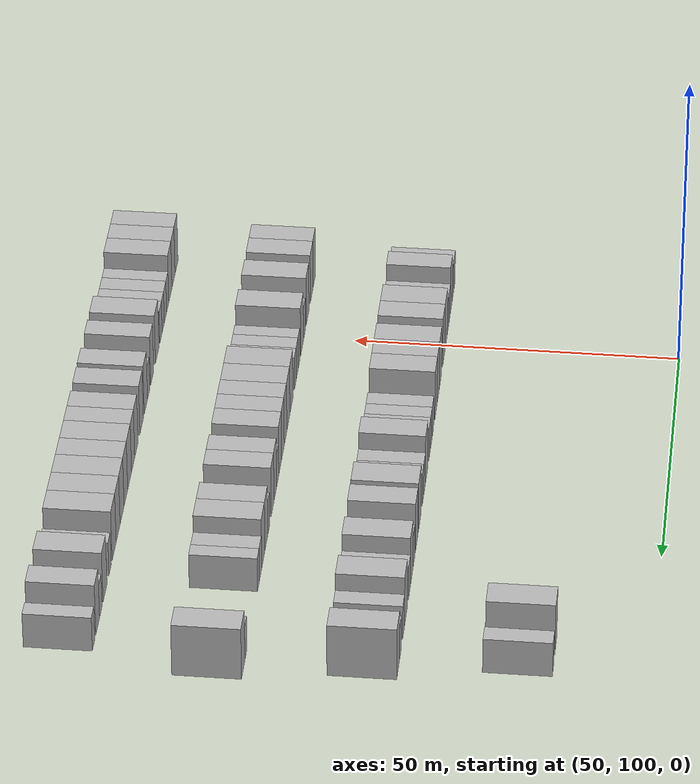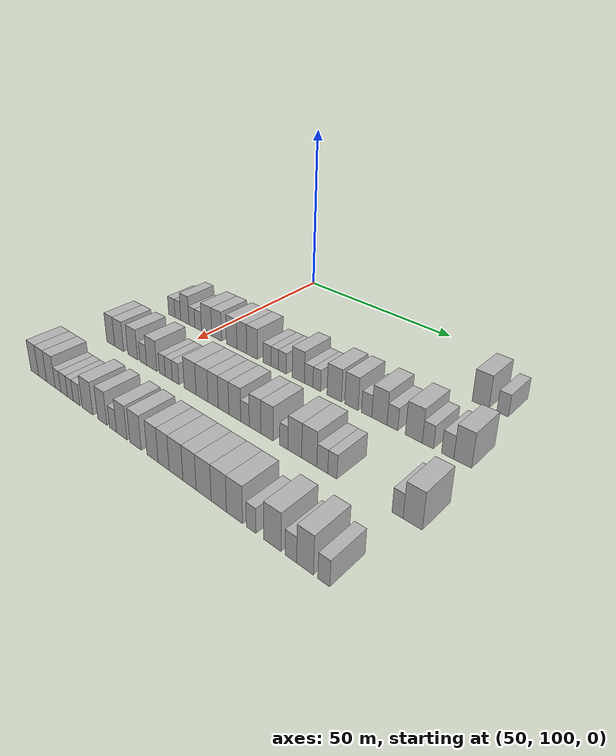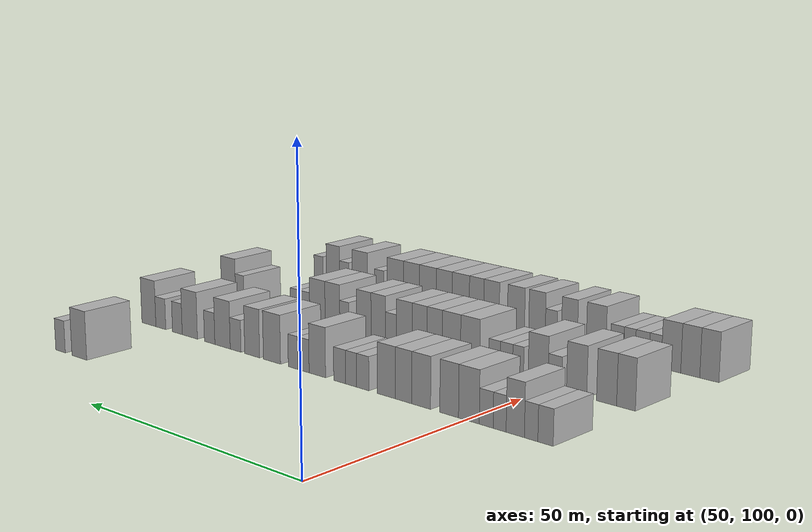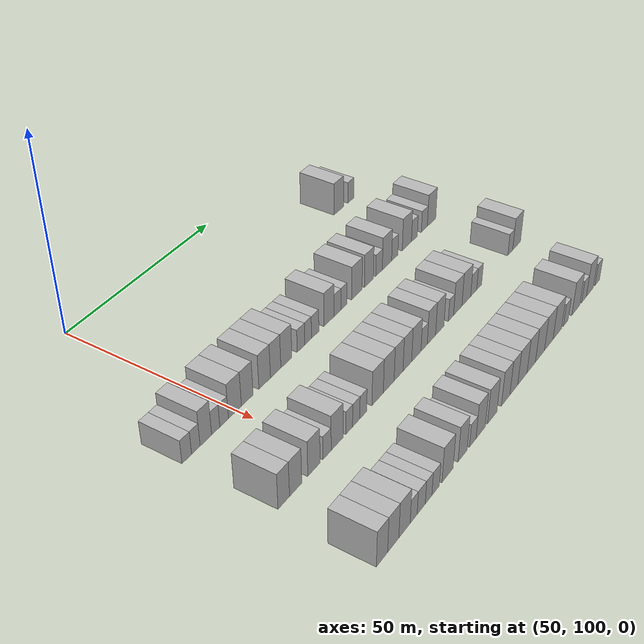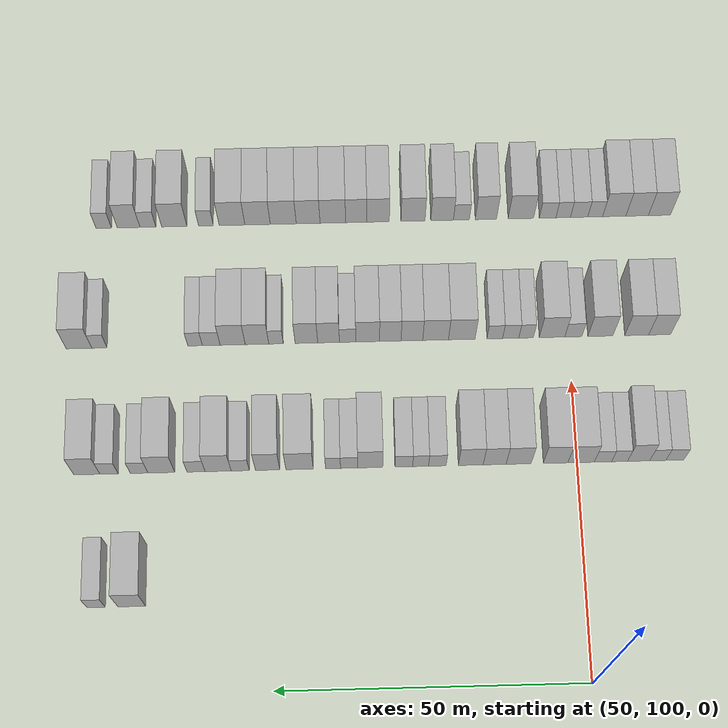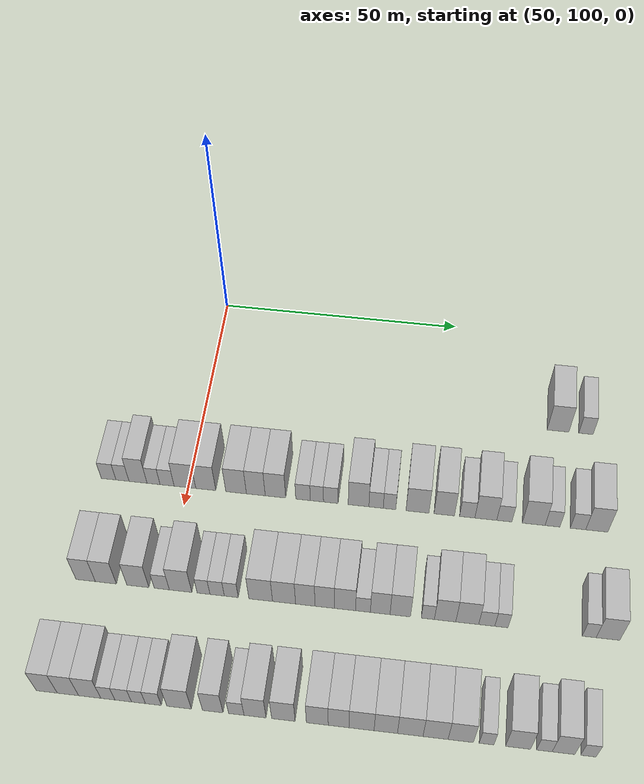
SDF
<sdf version="1.6">
 <world name="default">
  <model name="building_515">
   <static>1</static>
   <pose>69.0000 172.4227 0 0.000000 0.000000 0.000000</pose>
   <link name="link">
    <pose>0 0 4.50 0 0 0</pose>
    <collision name="collision"><geometry><box><size>10.0000 4.4120 9.0000</size></box></geometry></collision>
    <visual name="visual">
     <cast_shadows>0</cast_shadows>
     <geometry><box><size>10.0000 4.4120 9.0000</size></box></geometry>
     <material>
      <script>
       <uri>model://HANNAS_wall/materials/scripts</uri>
       <uri>model://HANNAS_wall/materials/textures</uri>
       <name>vrc/HANNAS_wall</name>
      </script>
     </material>
    </visual>
   </link>
  </model>
  <model name="building_516">
   <static>1</static>
   <pose>69.0000 178.0772 0 0.000000 0.000000 0.000000</pose>
   <link name="link">
    <pose>0 0 3.00 0 0 0</pose>
    <collision name="collision"><geometry><box><size>10.0000 2.8970 6.0000</size></box></geometry></collision>
    <visual name="visual">
     <cast_shadows>0</cast_shadows>
     <geometry><box><size>10.0000 2.8970 6.0000</size></box></geometry>
     <material>
      <script>
       <uri>model://HANNAS_wall/materials/scripts</uri>
       <uri>model://HANNAS_wall/materials/textures</uri>
       <name>vrc/HANNAS_wall</name>
      </script>
     </material>
    </visual>
   </link>
  </model>
  <model name="building_674">
   <static>1</static>
   <pose>91.0000 84.0044 0 0.000000 0.000000 0.000000</pose>
   <link name="link">
    <pose>0 0 3.00 0 0 0</pose>
    <collision name="collision"><geometry><box><size>10.0000 2.9565 6.0000</size></box></geometry></collision>
    <visual name="visual">
     <cast_shadows>0</cast_shadows>
     <geometry><box><size>10.0000 2.9565 6.0000</size></box></geometry>
     <material>
      <script>
       <uri>model://HANNAS_wall/materials/scripts</uri>
       <uri>model://HANNAS_wall/materials/textures</uri>
       <name>vrc/HANNAS_wall</name>
      </script>
     </material>
    </visual>
   </link>
  </model>
  <model name="building_675">
   <static>1</static>
   <pose>91.0000 86.8039 0 0.000000 0.000000 0.000000</pose>
   <link name="link">
    <pose>0 0 3.00 0 0 0</pose>
    <collision name="collision"><geometry><box><size>10.0000 2.6424 6.0000</size></box></geometry></collision>
    <visual name="visual">
     <cast_shadows>0</cast_shadows>
     <geometry><box><size>10.0000 2.6424 6.0000</size></box></geometry>
     <material>
      <script>
       <uri>model://HANNAS_wall/materials/scripts</uri>
       <uri>model://HANNAS_wall/materials/textures</uri>
       <name>vrc/HANNAS_wall</name>
      </script>
     </material>
    </visual>
   </link>
  </model>
  <model name="building_676">
   <static>1</static>
   <pose>91.0000 89.9491 0 0.000000 0.000000 0.000000</pose>
   <link name="link">
    <pose>0 0 4.50 0 0 0</pose>
    <collision name="collision"><geometry><box><size>10.0000 3.6480 9.0000</size></box></geometry></collision>
    <visual name="visual">
     <cast_shadows>0</cast_shadows>
     <geometry><box><size>10.0000 3.6480 9.0000</size></box></geometry>
     <material>
      <script>
       <uri>model://HANNAS_wall/materials/scripts</uri>
       <uri>model://HANNAS_wall/materials/textures</uri>
       <name>vrc/HANNAS_wall</name>
      </script>
     </material>
    </visual>
   </link>
  </model>
  <model name="building_677">
   <static>1</static>
   <pose>91.0000 93.0840 0 0.000000 0.000000 0.000000</pose>
   <link name="link">
    <pose>0 0 3.00 0 0 0</pose>
    <collision name="collision"><geometry><box><size>10.0000 2.6218 6.0000</size></box></geometry></collision>
    <visual name="visual">
     <cast_shadows>0</cast_shadows>
     <geometry><box><size>10.0000 2.6218 6.0000</size></box></geometry>
     <material>
      <script>
       <uri>model://HANNAS_wall/materials/scripts</uri>
       <uri>model://HANNAS_wall/materials/textures</uri>
       <name>vrc/HANNAS_wall</name>
      </script>
     </material>
    </visual>
   </link>
  </model>
  <model name="building_678">
   <static>1</static>
   <pose>91.0000 95.8154 0 0.000000 0.000000 0.000000</pose>
   <link name="link">
    <pose>0 0 3.00 0 0 0</pose>
    <collision name="collision"><geometry><box><size>10.0000 2.8410 6.0000</size></box></geometry></collision>
    <visual name="visual">
     <cast_shadows>0</cast_shadows>
     <geometry><box><size>10.0000 2.8410 6.0000</size></box></geometry>
     <material>
      <script>
       <uri>model://HANNAS_wall/materials/scripts</uri>
       <uri>model://HANNAS_wall/materials/textures</uri>
       <name>vrc/HANNAS_wall</name>
      </script>
     </material>
    </visual>
   </link>
  </model>
  <model name="building_679">
   <static>1</static>
   <pose>91.0000 99.4089 0 0.000000 0.000000 0.000000</pose>
   <link name="link">
    <pose>0 0 4.50 0 0 0</pose>
    <collision name="collision"><geometry><box><size>10.0000 4.3460 9.0000</size></box></geometry></collision>
    <visual name="visual">
     <cast_shadows>0</cast_shadows>
     <geometry><box><size>10.0000 4.3460 9.0000</size></box></geometry>
     <material>
      <script>
       <uri>model://HANNAS_wall/materials/scripts</uri>
       <uri>model://HANNAS_wall/materials/textures</uri>
       <name>vrc/HANNAS_wall</name>
      </script>
     </material>
    </visual>
   </link>
  </model>
  <model name="building_680">
   <static>1</static>
   <pose>91.0000 103.5857 0 0.000000 0.000000 0.000000</pose>
   <link name="link">
    <pose>0 0 4.50 0 0 0</pose>
    <collision name="collision"><geometry><box><size>10.0000 4.0075 9.0000</size></box></geometry></collision>
    <visual name="visual">
     <cast_shadows>0</cast_shadows>
     <geometry><box><size>10.0000 4.0075 9.0000</size></box></geometry>
     <material>
      <script>
       <uri>model://HANNAS_wall/materials/scripts</uri>
       <uri>model://HANNAS_wall/materials/textures</uri>
       <name>vrc/HANNAS_wall</name>
      </script>
     </material>
    </visual>
   </link>
  </model>
  <model name="building_681">
   <static>1</static>
   <pose>91.0000 109.6496 0 0.000000 0.000000 0.000000</pose>
   <link name="link">
    <pose>0 0 4.50 0 0 0</pose>
    <collision name="collision"><geometry><box><size>10.0000 4.1203 9.0000</size></box></geometry></collision>
    <visual name="visual">
     <cast_shadows>0</cast_shadows>
     <geometry><box><size>10.0000 4.1203 9.0000</size></box></geometry>
     <material>
      <script>
       <uri>model://HANNAS_wall/materials/scripts</uri>
       <uri>model://HANNAS_wall/materials/textures</uri>
       <name>vrc/HANNAS_wall</name>
      </script>
     </material>
    </visual>
   </link>
  </model>
  <model name="building_682">
   <static>1</static>
   <pose>91.0000 113.5874 0 0.000000 0.000000 0.000000</pose>
   <link name="link">
    <pose>0 0 4.50 0 0 0</pose>
    <collision name="collision"><geometry><box><size>10.0000 3.7552 9.0000</size></box></geometry></collision>
    <visual name="visual">
     <cast_shadows>0</cast_shadows>
     <geometry><box><size>10.0000 3.7552 9.0000</size></box></geometry>
     <material>
      <script>
       <uri>model://HANNAS_wall/materials/scripts</uri>
       <uri>model://HANNAS_wall/materials/textures</uri>
       <name>vrc/HANNAS_wall</name>
      </script>
     </material>
    </visual>
   </link>
  </model>
  <model name="building_683">
   <static>1</static>
   <pose>91.0000 117.4951 0 0.000000 0.000000 0.000000</pose>
   <link name="link">
    <pose>0 0 4.50 0 0 0</pose>
    <collision name="collision"><geometry><box><size>10.0000 4.0601 9.0000</size></box></geometry></collision>
    <visual name="visual">
     <cast_shadows>0</cast_shadows>
     <geometry><box><size>10.0000 4.0601 9.0000</size></box></geometry>
     <material>
      <script>
       <uri>model://HANNAS_wall/materials/scripts</uri>
       <uri>model://HANNAS_wall/materials/textures</uri>
       <name>vrc/HANNAS_wall</name>
      </script>
     </material>
    </visual>
   </link>
  </model>
  <model name="building_684">
   <static>1</static>
   <pose>91.0000 122.9651 0 0.000000 0.000000 0.000000</pose>
   <link name="link">
    <pose>0 0 3.00 0 0 0</pose>
    <collision name="collision"><geometry><box><size>10.0000 2.8800 6.0000</size></box></geometry></collision>
    <visual name="visual">
     <cast_shadows>0</cast_shadows>
     <geometry><box><size>10.0000 2.8800 6.0000</size></box></geometry>
     <material>
      <script>
       <uri>model://HANNAS_wall/materials/scripts</uri>
       <uri>model://HANNAS_wall/materials/textures</uri>
       <name>vrc/HANNAS_wall</name>
      </script>
     </material>
    </visual>
   </link>
  </model>
  <model name="building_685">
   <static>1</static>
   <pose>91.0000 125.7083 0 0.000000 0.000000 0.000000</pose>
   <link name="link">
    <pose>0 0 3.00 0 0 0</pose>
    <collision name="collision"><geometry><box><size>10.0000 2.6064 6.0000</size></box></geometry></collision>
    <visual name="visual">
     <cast_shadows>0</cast_shadows>
     <geometry><box><size>10.0000 2.6064 6.0000</size></box></geometry>
     <material>
      <script>
       <uri>model://HANNAS_wall/materials/scripts</uri>
       <uri>model://HANNAS_wall/materials/textures</uri>
       <name>vrc/HANNAS_wall</name>
      </script>
     </material>
    </visual>
   </link>
  </model>
  <model name="building_686">
   <static>1</static>
   <pose>91.0000 128.4539 0 0.000000 0.000000 0.000000</pose>
   <link name="link">
    <pose>0 0 3.00 0 0 0</pose>
    <collision name="collision"><geometry><box><size>10.0000 2.8848 6.0000</size></box></geometry></collision>
    <visual name="visual">
     <cast_shadows>0</cast_shadows>
     <geometry><box><size>10.0000 2.8848 6.0000</size></box></geometry>
     <material>
      <script>
       <uri>model://HANNAS_wall/materials/scripts</uri>
       <uri>model://HANNAS_wall/materials/textures</uri>
       <name>vrc/HANNAS_wall</name>
      </script>
     </material>
    </visual>
   </link>
  </model>
  <model name="building_687">
   <static>1</static>
   <pose>91.0000 133.9343 0 0.000000 0.000000 0.000000</pose>
   <link name="link">
    <pose>0 0 4.50 0 0 0</pose>
    <collision name="collision"><geometry><box><size>10.0000 4.0761 9.0000</size></box></geometry></collision>
    <visual name="visual">
     <cast_shadows>0</cast_shadows>
     <geometry><box><size>10.0000 4.0761 9.0000</size></box></geometry>
     <material>
      <script>
       <uri>model://HANNAS_wall/materials/scripts</uri>
       <uri>model://HANNAS_wall/materials/textures</uri>
       <name>vrc/HANNAS_wall</name>
      </script>
     </material>
    </visual>
   </link>
  </model>
  <model name="building_688">
   <static>1</static>
   <pose>91.0000 137.3813 0 0.000000 0.000000 0.000000</pose>
   <link name="link">
    <pose>0 0 3.00 0 0 0</pose>
    <collision name="collision"><geometry><box><size>10.0000 2.8181 6.0000</size></box></geometry></collision>
    <visual name="visual">
     <cast_shadows>0</cast_shadows>
     <geometry><box><size>10.0000 2.8181 6.0000</size></box></geometry>
     <material>
      <script>
       <uri>model://HANNAS_wall/materials/scripts</uri>
       <uri>model://HANNAS_wall/materials/textures</uri>
       <name>vrc/HANNAS_wall</name>
      </script>
     </material>
    </visual>
   </link>
  </model>
  <model name="building_689">
   <static>1</static>
   <pose>91.0000 140.0197 0 0.000000 0.000000 0.000000</pose>
   <link name="link">
    <pose>0 0 3.00 0 0 0</pose>
    <collision name="collision"><geometry><box><size>10.0000 2.4587 6.0000</size></box></geometry></collision>
    <visual name="visual">
     <cast_shadows>0</cast_shadows>
     <geometry><box><size>10.0000 2.4587 6.0000</size></box></geometry>
     <material>
      <script>
       <uri>model://HANNAS_wall/materials/scripts</uri>
       <uri>model://HANNAS_wall/materials/textures</uri>
       <name>vrc/HANNAS_wall</name>
      </script>
     </material>
    </visual>
   </link>
  </model>
  <model name="building_690">
   <static>1</static>
   <pose>91.0000 145.4903 0 0.000000 0.000000 0.000000</pose>
   <link name="link">
    <pose>0 0 4.50 0 0 0</pose>
    <collision name="collision"><geometry><box><size>10.0000 4.4824 9.0000</size></box></geometry></collision>
    <visual name="visual">
     <cast_shadows>0</cast_shadows>
     <geometry><box><size>10.0000 4.4824 9.0000</size></box></geometry>
     <material>
      <script>
       <uri>model://HANNAS_wall/materials/scripts</uri>
       <uri>model://HANNAS_wall/materials/textures</uri>
       <name>vrc/HANNAS_wall</name>
      </script>
     </material>
    </visual>
   </link>
  </model>
  <model name="building_691">
   <static>1</static>
   <pose>91.0000 150.7258 0 0.000000 0.000000 0.000000</pose>
   <link name="link">
    <pose>0 0 4.50 0 0 0</pose>
    <collision name="collision"><geometry><box><size>10.0000 3.9887 9.0000</size></box></geometry></collision>
    <visual name="visual">
     <cast_shadows>0</cast_shadows>
     <geometry><box><size>10.0000 3.9887 9.0000</size></box></geometry>
     <material>
      <script>
       <uri>model://HANNAS_wall/materials/scripts</uri>
       <uri>model://HANNAS_wall/materials/textures</uri>
       <name>vrc/HANNAS_wall</name>
      </script>
     </material>
    </visual>
   </link>
  </model>
  <model name="building_692">
   <static>1</static>
   <pose>91.0000 155.2010 0 0.000000 0.000000 0.000000</pose>
   <link name="link">
    <pose>0 0 3.00 0 0 0</pose>
    <collision name="collision"><geometry><box><size>10.0000 2.9616 6.0000</size></box></geometry></collision>
    <visual name="visual">
     <cast_shadows>0</cast_shadows>
     <geometry><box><size>10.0000 2.9616 6.0000</size></box></geometry>
     <material>
      <script>
       <uri>model://HANNAS_wall/materials/scripts</uri>
       <uri>model://HANNAS_wall/materials/textures</uri>
       <name>vrc/HANNAS_wall</name>
      </script>
     </material>
    </visual>
   </link>
  </model>
  <model name="building_693">
   <static>1</static>
   <pose>91.0000 158.8133 0 0.000000 0.000000 0.000000</pose>
   <link name="link">
    <pose>0 0 4.50 0 0 0</pose>
    <collision name="collision"><geometry><box><size>10.0000 4.2632 9.0000</size></box></geometry></collision>
    <visual name="visual">
     <cast_shadows>0</cast_shadows>
     <geometry><box><size>10.0000 4.2632 9.0000</size></box></geometry>
     <material>
      <script>
       <uri>model://HANNAS_wall/materials/scripts</uri>
       <uri>model://HANNAS_wall/materials/textures</uri>
       <name>vrc/HANNAS_wall</name>
      </script>
     </material>
    </visual>
   </link>
  </model>
  <model name="building_694">
   <static>1</static>
   <pose>91.0000 162.4198 0 0.000000 0.000000 0.000000</pose>
   <link name="link">
    <pose>0 0 3.00 0 0 0</pose>
    <collision name="collision"><geometry><box><size>10.0000 2.9498 6.0000</size></box></geometry></collision>
    <visual name="visual">
     <cast_shadows>0</cast_shadows>
     <geometry><box><size>10.0000 2.9498 6.0000</size></box></geometry>
     <material>
      <script>
       <uri>model://HANNAS_wall/materials/scripts</uri>
       <uri>model://HANNAS_wall/materials/textures</uri>
       <name>vrc/HANNAS_wall</name>
      </script>
     </material>
    </visual>
   </link>
  </model>
  <model name="building_695">
   <static>1</static>
   <pose>91.0000 168.0978 0 0.000000 0.000000 0.000000</pose>
   <link name="link">
    <pose>0 0 4.50 0 0 0</pose>
    <collision name="collision"><geometry><box><size>10.0000 4.4062 9.0000</size></box></geometry></collision>
    <visual name="visual">
     <cast_shadows>0</cast_shadows>
     <geometry><box><size>10.0000 4.4062 9.0000</size></box></geometry>
     <material>
      <script>
       <uri>model://HANNAS_wall/materials/scripts</uri>
       <uri>model://HANNAS_wall/materials/textures</uri>
       <name>vrc/HANNAS_wall</name>
      </script>
     </material>
    </visual>
   </link>
  </model>
  <model name="building_696">
   <static>1</static>
   <pose>91.0000 171.7258 0 0.000000 0.000000 0.000000</pose>
   <link name="link">
    <pose>0 0 3.00 0 0 0</pose>
    <collision name="collision"><geometry><box><size>10.0000 2.8497 6.0000</size></box></geometry></collision>
    <visual name="visual">
     <cast_shadows>0</cast_shadows>
     <geometry><box><size>10.0000 2.8497 6.0000</size></box></geometry>
     <material>
      <script>
       <uri>model://HANNAS_wall/materials/scripts</uri>
       <uri>model://HANNAS_wall/materials/textures</uri>
       <name>vrc/HANNAS_wall</name>
      </script>
     </material>
    </visual>
   </link>
  </model>
  <model name="building_697">
   <static>1</static>
   <pose>91.0000 176.6337 0 0.000000 0.000000 0.000000</pose>
   <link name="link">
    <pose>0 0 3.00 0 0 0</pose>
    <collision name="collision"><geometry><box><size>10.0000 2.9661 6.0000</size></box></geometry></collision>
    <visual name="visual">
     <cast_shadows>0</cast_shadows>
     <geometry><box><size>10.0000 2.9661 6.0000</size></box></geometry>
     <material>
      <script>
       <uri>model://HANNAS_wall/materials/scripts</uri>
       <uri>model://HANNAS_wall/materials/textures</uri>
       <name>vrc/HANNAS_wall</name>
      </script>
     </material>
    </visual>
   </link>
  </model>
  <model name="building_698">
   <static>1</static>
   <pose>91.0000 180.2407 0 0.000000 0.000000 0.000000</pose>
   <link name="link">
    <pose>0 0 4.50 0 0 0</pose>
    <collision name="collision"><geometry><box><size>10.0000 4.2479 9.0000</size></box></geometry></collision>
    <visual name="visual">
     <cast_shadows>0</cast_shadows>
     <geometry><box><size>10.0000 4.2479 9.0000</size></box></geometry>
     <material>
      <script>
       <uri>model://HANNAS_wall/materials/scripts</uri>
       <uri>model://HANNAS_wall/materials/textures</uri>
       <name>vrc/HANNAS_wall</name>
      </script>
     </material>
    </visual>
   </link>
  </model>
  <model name="building_864">
   <static>1</static>
   <pose>113.0000 84.6577 0 0.000000 0.000000 0.000000</pose>
   <link name="link">
    <pose>0 0 4.50 0 0 0</pose>
    <collision name="collision"><geometry><box><size>10.0000 3.7193 9.0000</size></box></geometry></collision>
    <visual name="visual">
     <cast_shadows>0</cast_shadows>
     <geometry><box><size>10.0000 3.7193 9.0000</size></box></geometry>
     <material>
      <script>
       <uri>model://HANNAS_wall/materials/scripts</uri>
       <uri>model://HANNAS_wall/materials/textures</uri>
       <name>vrc/HANNAS_wall</name>
      </script>
     </material>
    </visual>
   </link>
  </model>
  <model name="building_865">
   <static>1</static>
   <pose>113.0000 88.5385 0 0.000000 0.000000 0.000000</pose>
   <link name="link">
    <pose>0 0 4.50 0 0 0</pose>
    <collision name="collision"><geometry><box><size>10.0000 4.0424 9.0000</size></box></geometry></collision>
    <visual name="visual">
     <cast_shadows>0</cast_shadows>
     <geometry><box><size>10.0000 4.0424 9.0000</size></box></geometry>
     <material>
      <script>
       <uri>model://HANNAS_wall/materials/scripts</uri>
       <uri>model://HANNAS_wall/materials/textures</uri>
       <name>vrc/HANNAS_wall</name>
      </script>
     </material>
    </visual>
   </link>
  </model>
  <model name="building_866">
   <static>1</static>
   <pose>113.0000 94.6717 0 0.000000 0.000000 0.000000</pose>
   <link name="link">
    <pose>0 0 4.50 0 0 0</pose>
    <collision name="collision"><geometry><box><size>10.0000 4.2241 9.0000</size></box></geometry></collision>
    <visual name="visual">
     <cast_shadows>0</cast_shadows>
     <geometry><box><size>10.0000 4.2241 9.0000</size></box></geometry>
     <material>
      <script>
       <uri>model://HANNAS_wall/materials/scripts</uri>
       <uri>model://HANNAS_wall/materials/textures</uri>
       <name>vrc/HANNAS_wall</name>
      </script>
     </material>
    </visual>
   </link>
  </model>
  <model name="building_867">
   <static>1</static>
   <pose>113.0000 99.2260 0 0.000000 0.000000 0.000000</pose>
   <link name="link">
    <pose>0 0 3.00 0 0 0</pose>
    <collision name="collision"><geometry><box><size>10.0000 2.8844 6.0000</size></box></geometry></collision>
    <visual name="visual">
     <cast_shadows>0</cast_shadows>
     <geometry><box><size>10.0000 2.8844 6.0000</size></box></geometry>
     <material>
      <script>
       <uri>model://HANNAS_wall/materials/scripts</uri>
       <uri>model://HANNAS_wall/materials/textures</uri>
       <name>vrc/HANNAS_wall</name>
      </script>
     </material>
    </visual>
   </link>
  </model>
  <model name="building_868">
   <static>1</static>
   <pose>113.0000 102.8153 0 0.000000 0.000000 0.000000</pose>
   <link name="link">
    <pose>0 0 4.50 0 0 0</pose>
    <collision name="collision"><geometry><box><size>10.0000 4.2943 9.0000</size></box></geometry></collision>
    <visual name="visual">
     <cast_shadows>0</cast_shadows>
     <geometry><box><size>10.0000 4.2943 9.0000</size></box></geometry>
     <material>
      <script>
       <uri>model://HANNAS_wall/materials/scripts</uri>
       <uri>model://HANNAS_wall/materials/textures</uri>
       <name>vrc/HANNAS_wall</name>
      </script>
     </material>
    </visual>
   </link>
  </model>
  <model name="building_869">
   <static>1</static>
   <pose>113.0000 107.1842 0 0.000000 0.000000 0.000000</pose>
   <link name="link">
    <pose>0 0 3.00 0 0 0</pose>
    <collision name="collision"><geometry><box><size>10.0000 2.4434 6.0000</size></box></geometry></collision>
    <visual name="visual">
     <cast_shadows>0</cast_shadows>
     <geometry><box><size>10.0000 2.4434 6.0000</size></box></geometry>
     <material>
      <script>
       <uri>model://HANNAS_wall/materials/scripts</uri>
       <uri>model://HANNAS_wall/materials/textures</uri>
       <name>vrc/HANNAS_wall</name>
      </script>
     </material>
    </visual>
   </link>
  </model>
  <model name="building_870">
   <static>1</static>
   <pose>113.0000 109.7714 0 0.000000 0.000000 0.000000</pose>
   <link name="link">
    <pose>0 0 3.00 0 0 0</pose>
    <collision name="collision"><geometry><box><size>10.0000 2.7311 6.0000</size></box></geometry></collision>
    <visual name="visual">
     <cast_shadows>0</cast_shadows>
     <geometry><box><size>10.0000 2.7311 6.0000</size></box></geometry>
     <material>
      <script>
       <uri>model://HANNAS_wall/materials/scripts</uri>
       <uri>model://HANNAS_wall/materials/textures</uri>
       <name>vrc/HANNAS_wall</name>
      </script>
     </material>
    </visual>
   </link>
  </model>
  <model name="building_871">
   <static>1</static>
   <pose>113.0000 112.4507 0 0.000000 0.000000 0.000000</pose>
   <link name="link">
    <pose>0 0 3.00 0 0 0</pose>
    <collision name="collision"><geometry><box><size>10.0000 2.6275 6.0000</size></box></geometry></collision>
    <visual name="visual">
     <cast_shadows>0</cast_shadows>
     <geometry><box><size>10.0000 2.6275 6.0000</size></box></geometry>
     <material>
      <script>
       <uri>model://HANNAS_wall/materials/scripts</uri>
       <uri>model://HANNAS_wall/materials/textures</uri>
       <name>vrc/HANNAS_wall</name>
      </script>
     </material>
    </visual>
   </link>
  </model>
  <model name="building_872">
   <static>1</static>
   <pose>113.0000 118.0005 0 0.000000 0.000000 0.000000</pose>
   <link name="link">
    <pose>0 0 4.50 0 0 0</pose>
    <collision name="collision"><geometry><box><size>10.0000 4.4721 9.0000</size></box></geometry></collision>
    <visual name="visual">
     <cast_shadows>0</cast_shadows>
     <geometry><box><size>10.0000 4.4721 9.0000</size></box></geometry>
     <material>
      <script>
       <uri>model://HANNAS_wall/materials/scripts</uri>
       <uri>model://HANNAS_wall/materials/textures</uri>
       <name>vrc/HANNAS_wall</name>
      </script>
     </material>
    </visual>
   </link>
  </model>
  <model name="building_873">
   <static>1</static>
   <pose>113.0000 122.4009 0 0.000000 0.000000 0.000000</pose>
   <link name="link">
    <pose>0 0 4.50 0 0 0</pose>
    <collision name="collision"><geometry><box><size>10.0000 4.3287 9.0000</size></box></geometry></collision>
    <visual name="visual">
     <cast_shadows>0</cast_shadows>
     <geometry><box><size>10.0000 4.3287 9.0000</size></box></geometry>
     <material>
      <script>
       <uri>model://HANNAS_wall/materials/scripts</uri>
       <uri>model://HANNAS_wall/materials/textures</uri>
       <name>vrc/HANNAS_wall</name>
      </script>
     </material>
    </visual>
   </link>
  </model>
  <model name="building_874">
   <static>1</static>
   <pose>113.0000 126.3901 0 0.000000 0.000000 0.000000</pose>
   <link name="link">
    <pose>0 0 4.50 0 0 0</pose>
    <collision name="collision"><geometry><box><size>10.0000 3.6496 9.0000</size></box></geometry></collision>
    <visual name="visual">
     <cast_shadows>0</cast_shadows>
     <geometry><box><size>10.0000 3.6496 9.0000</size></box></geometry>
     <material>
      <script>
       <uri>model://HANNAS_wall/materials/scripts</uri>
       <uri>model://HANNAS_wall/materials/textures</uri>
       <name>vrc/HANNAS_wall</name>
      </script>
     </material>
    </visual>
   </link>
  </model>
  <model name="building_875">
   <static>1</static>
   <pose>113.0000 130.0208 0 0.000000 0.000000 0.000000</pose>
   <link name="link">
    <pose>0 0 4.50 0 0 0</pose>
    <collision name="collision"><geometry><box><size>10.0000 3.6119 9.0000</size></box></geometry></collision>
    <visual name="visual">
     <cast_shadows>0</cast_shadows>
     <geometry><box><size>10.0000 3.6119 9.0000</size></box></geometry>
     <material>
      <script>
       <uri>model://HANNAS_wall/materials/scripts</uri>
       <uri>model://HANNAS_wall/materials/textures</uri>
       <name>vrc/HANNAS_wall</name>
      </script>
     </material>
    </visual>
   </link>
  </model>
  <model name="building_876">
   <static>1</static>
   <pose>113.0000 133.8149 0 0.000000 0.000000 0.000000</pose>
   <link name="link">
    <pose>0 0 4.50 0 0 0</pose>
    <collision name="collision"><geometry><box><size>10.0000 3.9764 9.0000</size></box></geometry></collision>
    <visual name="visual">
     <cast_shadows>0</cast_shadows>
     <geometry><box><size>10.0000 3.9764 9.0000</size></box></geometry>
     <material>
      <script>
       <uri>model://HANNAS_wall/materials/scripts</uri>
       <uri>model://HANNAS_wall/materials/textures</uri>
       <name>vrc/HANNAS_wall</name>
      </script>
     </material>
    </visual>
   </link>
  </model>
  <model name="building_877">
   <static>1</static>
   <pose>113.0000 137.1823 0 0.000000 0.000000 0.000000</pose>
   <link name="link">
    <pose>0 0 3.00 0 0 0</pose>
    <collision name="collision"><geometry><box><size>10.0000 2.7584 6.0000</size></box></geometry></collision>
    <visual name="visual">
     <cast_shadows>0</cast_shadows>
     <geometry><box><size>10.0000 2.7584 6.0000</size></box></geometry>
     <material>
      <script>
       <uri>model://HANNAS_wall/materials/scripts</uri>
       <uri>model://HANNAS_wall/materials/textures</uri>
       <name>vrc/HANNAS_wall</name>
      </script>
     </material>
    </visual>
   </link>
  </model>
  <model name="building_878">
   <static>1</static>
   <pose>113.0000 140.3886 0 0.000000 0.000000 0.000000</pose>
   <link name="link">
    <pose>0 0 4.50 0 0 0</pose>
    <collision name="collision"><geometry><box><size>10.0000 3.6543 9.0000</size></box></geometry></collision>
    <visual name="visual">
     <cast_shadows>0</cast_shadows>
     <geometry><box><size>10.0000 3.6543 9.0000</size></box></geometry>
     <material>
      <script>
       <uri>model://HANNAS_wall/materials/scripts</uri>
       <uri>model://HANNAS_wall/materials/textures</uri>
       <name>vrc/HANNAS_wall</name>
      </script>
     </material>
    </visual>
   </link>
  </model>
  <model name="building_879">
   <static>1</static>
   <pose>113.0000 144.1109 0 0.000000 0.000000 0.000000</pose>
   <link name="link">
    <pose>0 0 4.50 0 0 0</pose>
    <collision name="collision"><geometry><box><size>10.0000 3.7902 9.0000</size></box></geometry></collision>
    <visual name="visual">
     <cast_shadows>0</cast_shadows>
     <geometry><box><size>10.0000 3.7902 9.0000</size></box></geometry>
     <material>
      <script>
       <uri>model://HANNAS_wall/materials/scripts</uri>
       <uri>model://HANNAS_wall/materials/textures</uri>
       <name>vrc/HANNAS_wall</name>
      </script>
     </material>
    </visual>
   </link>
  </model>
  <model name="building_880">
   <static>1</static>
   <pose>113.0000 149.2182 0 0.000000 0.000000 0.000000</pose>
   <link name="link">
    <pose>0 0 3.00 0 0 0</pose>
    <collision name="collision"><geometry><box><size>10.0000 2.4244 6.0000</size></box></geometry></collision>
    <visual name="visual">
     <cast_shadows>0</cast_shadows>
     <geometry><box><size>10.0000 2.4244 6.0000</size></box></geometry>
     <material>
      <script>
       <uri>model://HANNAS_wall/materials/scripts</uri>
       <uri>model://HANNAS_wall/materials/textures</uri>
       <name>vrc/HANNAS_wall</name>
      </script>
     </material>
    </visual>
   </link>
  </model>
  <model name="building_881">
   <static>1</static>
   <pose>113.0000 152.4066 0 0.000000 0.000000 0.000000</pose>
   <link name="link">
    <pose>0 0 4.50 0 0 0</pose>
    <collision name="collision"><geometry><box><size>10.0000 3.9524 9.0000</size></box></geometry></collision>
    <visual name="visual">
     <cast_shadows>0</cast_shadows>
     <geometry><box><size>10.0000 3.9524 9.0000</size></box></geometry>
     <material>
      <script>
       <uri>model://HANNAS_wall/materials/scripts</uri>
       <uri>model://HANNAS_wall/materials/textures</uri>
       <name>vrc/HANNAS_wall</name>
      </script>
     </material>
    </visual>
   </link>
  </model>
  <model name="building_882">
   <static>1</static>
   <pose>113.0000 156.4924 0 0.000000 0.000000 0.000000</pose>
   <link name="link">
    <pose>0 0 4.50 0 0 0</pose>
    <collision name="collision"><geometry><box><size>10.0000 4.2190 9.0000</size></box></geometry></collision>
    <visual name="visual">
     <cast_shadows>0</cast_shadows>
     <geometry><box><size>10.0000 4.2190 9.0000</size></box></geometry>
     <material>
      <script>
       <uri>model://HANNAS_wall/materials/scripts</uri>
       <uri>model://HANNAS_wall/materials/textures</uri>
       <name>vrc/HANNAS_wall</name>
      </script>
     </material>
    </visual>
   </link>
  </model>
  <model name="building_883">
   <static>1</static>
   <pose>113.0000 160.0862 0 0.000000 0.000000 0.000000</pose>
   <link name="link">
    <pose>0 0 3.00 0 0 0</pose>
    <collision name="collision"><geometry><box><size>10.0000 2.9687 6.0000</size></box></geometry></collision>
    <visual name="visual">
     <cast_shadows>0</cast_shadows>
     <geometry><box><size>10.0000 2.9687 6.0000</size></box></geometry>
     <material>
      <script>
       <uri>model://HANNAS_wall/materials/scripts</uri>
       <uri>model://HANNAS_wall/materials/textures</uri>
       <name>vrc/HANNAS_wall</name>
      </script>
     </material>
    </visual>
   </link>
  </model>
  <model name="building_884">
   <static>1</static>
   <pose>113.0000 162.7919 0 0.000000 0.000000 0.000000</pose>
   <link name="link">
    <pose>0 0 3.00 0 0 0</pose>
    <collision name="collision"><geometry><box><size>10.0000 2.4425 6.0000</size></box></geometry></collision>
    <visual name="visual">
     <cast_shadows>0</cast_shadows>
     <geometry><box><size>10.0000 2.4425 6.0000</size></box></geometry>
     <material>
      <script>
       <uri>model://HANNAS_wall/materials/scripts</uri>
       <uri>model://HANNAS_wall/materials/textures</uri>
       <name>vrc/HANNAS_wall</name>
      </script>
     </material>
    </visual>
   </link>
  </model>
  <model name="building_885">
   <static>1</static>
   <pose>113.0000 178.8335 0 0.000000 0.000000 0.000000</pose>
   <link name="link">
    <pose>0 0 3.00 0 0 0</pose>
    <collision name="collision"><geometry><box><size>10.0000 2.5469 6.0000</size></box></geometry></collision>
    <visual name="visual">
     <cast_shadows>0</cast_shadows>
     <geometry><box><size>10.0000 2.5469 6.0000</size></box></geometry>
     <material>
      <script>
       <uri>model://HANNAS_wall/materials/scripts</uri>
       <uri>model://HANNAS_wall/materials/textures</uri>
       <name>vrc/HANNAS_wall</name>
      </script>
     </material>
    </visual>
   </link>
  </model>
  <model name="building_886">
   <static>1</static>
   <pose>113.0000 182.2583 0 0.000000 0.000000 0.000000</pose>
   <link name="link">
    <pose>0 0 4.50 0 0 0</pose>
    <collision name="collision"><geometry><box><size>10.0000 4.3027 9.0000</size></box></geometry></collision>
    <visual name="visual">
     <cast_shadows>0</cast_shadows>
     <geometry><box><size>10.0000 4.3027 9.0000</size></box></geometry>
     <material>
      <script>
       <uri>model://HANNAS_wall/materials/scripts</uri>
       <uri>model://HANNAS_wall/materials/textures</uri>
       <name>vrc/HANNAS_wall</name>
      </script>
     </material>
    </visual>
   </link>
  </model>
  <model name="building_1041">
   <static>1</static>
   <pose>135.0000 82.8849 0 0.000000 0.000000 0.000000</pose>
   <link name="link">
    <pose>0 0 4.50 0 0 0</pose>
    <collision name="collision"><geometry><box><size>10.0000 3.8308 9.0000</size></box></geometry></collision>
    <visual name="visual">
     <cast_shadows>0</cast_shadows>
     <geometry><box><size>10.0000 3.8308 9.0000</size></box></geometry>
     <material>
      <script>
       <uri>model://HANNAS_wall/materials/scripts</uri>
       <uri>model://HANNAS_wall/materials/textures</uri>
       <name>vrc/HANNAS_wall</name>
      </script>
     </material>
    </visual>
   </link>
  </model>
  <model name="building_1042">
   <static>1</static>
   <pose>135.0000 86.7422 0 0.000000 0.000000 0.000000</pose>
   <link name="link">
    <pose>0 0 4.50 0 0 0</pose>
    <collision name="collision"><geometry><box><size>10.0000 3.8837 9.0000</size></box></geometry></collision>
    <visual name="visual">
     <cast_shadows>0</cast_shadows>
     <geometry><box><size>10.0000 3.8837 9.0000</size></box></geometry>
     <material>
      <script>
       <uri>model://HANNAS_wall/materials/scripts</uri>
       <uri>model://HANNAS_wall/materials/textures</uri>
       <name>vrc/HANNAS_wall</name>
      </script>
     </material>
    </visual>
   </link>
  </model>
  <model name="building_1043">
   <static>1</static>
   <pose>135.0000 90.6999 0 0.000000 0.000000 0.000000</pose>
   <link name="link">
    <pose>0 0 4.50 0 0 0</pose>
    <collision name="collision"><geometry><box><size>10.0000 4.0317 9.0000</size></box></geometry></collision>
    <visual name="visual">
     <cast_shadows>0</cast_shadows>
     <geometry><box><size>10.0000 4.0317 9.0000</size></box></geometry>
     <material>
      <script>
       <uri>model://HANNAS_wall/materials/scripts</uri>
       <uri>model://HANNAS_wall/materials/textures</uri>
       <name>vrc/HANNAS_wall</name>
      </script>
     </material>
    </visual>
   </link>
  </model>
  <model name="building_1044">
   <static>1</static>
   <pose>135.0000 94.0018 0 0.000000 0.000000 0.000000</pose>
   <link name="link">
    <pose>0 0 3.00 0 0 0</pose>
    <collision name="collision"><geometry><box><size>10.0000 2.5720 6.0000</size></box></geometry></collision>
    <visual name="visual">
     <cast_shadows>0</cast_shadows>
     <geometry><box><size>10.0000 2.5720 6.0000</size></box></geometry>
     <material>
      <script>
       <uri>model://HANNAS_wall/materials/scripts</uri>
       <uri>model://HANNAS_wall/materials/textures</uri>
       <name>vrc/HANNAS_wall</name>
      </script>
     </material>
    </visual>
   </link>
  </model>
  <model name="building_1045">
   <static>1</static>
   <pose>135.0000 96.7832 0 0.000000 0.000000 0.000000</pose>
   <link name="link">
    <pose>0 0 3.00 0 0 0</pose>
    <collision name="collision"><geometry><box><size>10.0000 2.9909 6.0000</size></box></geometry></collision>
    <visual name="visual">
     <cast_shadows>0</cast_shadows>
     <geometry><box><size>10.0000 2.9909 6.0000</size></box></geometry>
     <material>
      <script>
       <uri>model://HANNAS_wall/materials/scripts</uri>
       <uri>model://HANNAS_wall/materials/textures</uri>
       <name>vrc/HANNAS_wall</name>
      </script>
     </material>
    </visual>
   </link>
  </model>
  <model name="building_1046">
   <static>1</static>
   <pose>135.0000 99.5353 0 0.000000 0.000000 0.000000</pose>
   <link name="link">
    <pose>0 0 3.00 0 0 0</pose>
    <collision name="collision"><geometry><box><size>10.0000 2.5133 6.0000</size></box></geometry></collision>
    <visual name="visual">
     <cast_shadows>0</cast_shadows>
     <geometry><box><size>10.0000 2.5133 6.0000</size></box></geometry>
     <material>
      <script>
       <uri>model://HANNAS_wall/materials/scripts</uri>
       <uri>model://HANNAS_wall/materials/textures</uri>
       <name>vrc/HANNAS_wall</name>
      </script>
     </material>
    </visual>
   </link>
  </model>
  <model name="building_1047">
   <static>1</static>
   <pose>135.0000 102.2211 0 0.000000 0.000000 0.000000</pose>
   <link name="link">
    <pose>0 0 3.00 0 0 0</pose>
    <collision name="collision"><geometry><box><size>10.0000 2.8583 6.0000</size></box></geometry></collision>
    <visual name="visual">
     <cast_shadows>0</cast_shadows>
     <geometry><box><size>10.0000 2.8583 6.0000</size></box></geometry>
     <material>
      <script>
       <uri>model://HANNAS_wall/materials/scripts</uri>
       <uri>model://HANNAS_wall/materials/textures</uri>
       <name>vrc/HANNAS_wall</name>
      </script>
     </material>
    </visual>
   </link>
  </model>
  <model name="building_1048">
   <static>1</static>
   <pose>135.0000 106.8505 0 0.000000 0.000000 0.000000</pose>
   <link name="link">
    <pose>0 0 4.50 0 0 0</pose>
    <collision name="collision"><geometry><box><size>10.0000 4.4004 9.0000</size></box></geometry></collision>
    <visual name="visual">
     <cast_shadows>0</cast_shadows>
     <geometry><box><size>10.0000 4.4004 9.0000</size></box></geometry>
     <material>
      <script>
       <uri>model://HANNAS_wall/materials/scripts</uri>
       <uri>model://HANNAS_wall/materials/textures</uri>
       <name>vrc/HANNAS_wall</name>
      </script>
     </material>
    </visual>
   </link>
  </model>
  <model name="building_1049">
   <static>1</static>
   <pose>135.0000 112.8868 0 0.000000 0.000000 0.000000</pose>
   <link name="link">
    <pose>0 0 4.50 0 0 0</pose>
    <collision name="collision"><geometry><box><size>10.0000 3.6724 9.0000</size></box></geometry></collision>
    <visual name="visual">
     <cast_shadows>0</cast_shadows>
     <geometry><box><size>10.0000 3.6724 9.0000</size></box></geometry>
     <material>
      <script>
       <uri>model://HANNAS_wall/materials/scripts</uri>
       <uri>model://HANNAS_wall/materials/textures</uri>
       <name>vrc/HANNAS_wall</name>
      </script>
     </material>
    </visual>
   </link>
  </model>
  <model name="building_1050">
   <static>1</static>
   <pose>135.0000 117.0992 0 0.000000 0.000000 0.000000</pose>
   <link name="link">
    <pose>0 0 3.00 0 0 0</pose>
    <collision name="collision"><geometry><box><size>10.0000 2.7524 6.0000</size></box></geometry></collision>
    <visual name="visual">
     <cast_shadows>0</cast_shadows>
     <geometry><box><size>10.0000 2.7524 6.0000</size></box></geometry>
     <material>
      <script>
       <uri>model://HANNAS_wall/materials/scripts</uri>
       <uri>model://HANNAS_wall/materials/textures</uri>
       <name>vrc/HANNAS_wall</name>
      </script>
     </material>
    </visual>
   </link>
  </model>
  <model name="building_1051">
   <static>1</static>
   <pose>135.0000 120.4359 0 0.000000 0.000000 0.000000</pose>
   <link name="link">
    <pose>0 0 4.50 0 0 0</pose>
    <collision name="collision"><geometry><box><size>10.0000 3.9210 9.0000</size></box></geometry></collision>
    <visual name="visual">
     <cast_shadows>0</cast_shadows>
     <geometry><box><size>10.0000 3.9210 9.0000</size></box></geometry>
     <material>
      <script>
       <uri>model://HANNAS_wall/materials/scripts</uri>
       <uri>model://HANNAS_wall/materials/textures</uri>
       <name>vrc/HANNAS_wall</name>
      </script>
     </material>
    </visual>
   </link>
  </model>
  <model name="building_1052">
   <static>1</static>
   <pose>135.0000 125.4741 0 0.000000 0.000000 0.000000</pose>
   <link name="link">
    <pose>0 0 4.50 0 0 0</pose>
    <collision name="collision"><geometry><box><size>10.0000 4.1554 9.0000</size></box></geometry></collision>
    <visual name="visual">
     <cast_shadows>0</cast_shadows>
     <geometry><box><size>10.0000 4.1554 9.0000</size></box></geometry>
     <material>
      <script>
       <uri>model://HANNAS_wall/materials/scripts</uri>
       <uri>model://HANNAS_wall/materials/textures</uri>
       <name>vrc/HANNAS_wall</name>
      </script>
     </material>
    </visual>
   </link>
  </model>
  <model name="building_1053">
   <static>1</static>
   <pose>135.0000 131.4858 0 0.000000 0.000000 0.000000</pose>
   <link name="link">
    <pose>0 0 4.50 0 0 0</pose>
    <collision name="collision"><geometry><box><size>10.0000 3.8680 9.0000</size></box></geometry></collision>
    <visual name="visual">
     <cast_shadows>0</cast_shadows>
     <geometry><box><size>10.0000 3.8680 9.0000</size></box></geometry>
     <material>
      <script>
       <uri>model://HANNAS_wall/materials/scripts</uri>
       <uri>model://HANNAS_wall/materials/textures</uri>
       <name>vrc/HANNAS_wall</name>
      </script>
     </material>
    </visual>
   </link>
  </model>
  <model name="building_1054">
   <static>1</static>
   <pose>135.0000 135.2448 0 0.000000 0.000000 0.000000</pose>
   <link name="link">
    <pose>0 0 4.50 0 0 0</pose>
    <collision name="collision"><geometry><box><size>10.0000 3.6499 9.0000</size></box></geometry></collision>
    <visual name="visual">
     <cast_shadows>0</cast_shadows>
     <geometry><box><size>10.0000 3.6499 9.0000</size></box></geometry>
     <material>
      <script>
       <uri>model://HANNAS_wall/materials/scripts</uri>
       <uri>model://HANNAS_wall/materials/textures</uri>
       <name>vrc/HANNAS_wall</name>
      </script>
     </material>
    </visual>
   </link>
  </model>
  <model name="building_1055">
   <static>1</static>
   <pose>135.0000 139.2818 0 0.000000 0.000000 0.000000</pose>
   <link name="link">
    <pose>0 0 4.50 0 0 0</pose>
    <collision name="collision"><geometry><box><size>10.0000 4.4241 9.0000</size></box></geometry></collision>
    <visual name="visual">
     <cast_shadows>0</cast_shadows>
     <geometry><box><size>10.0000 4.4241 9.0000</size></box></geometry>
     <material>
      <script>
       <uri>model://HANNAS_wall/materials/scripts</uri>
       <uri>model://HANNAS_wall/materials/textures</uri>
       <name>vrc/HANNAS_wall</name>
      </script>
     </material>
    </visual>
   </link>
  </model>
  <model name="building_1056">
   <static>1</static>
   <pose>135.0000 143.5454 0 0.000000 0.000000 0.000000</pose>
   <link name="link">
    <pose>0 0 4.50 0 0 0</pose>
    <collision name="collision"><geometry><box><size>10.0000 4.1033 9.0000</size></box></geometry></collision>
    <visual name="visual">
     <cast_shadows>0</cast_shadows>
     <geometry><box><size>10.0000 4.1033 9.0000</size></box></geometry>
     <material>
      <script>
       <uri>model://HANNAS_wall/materials/scripts</uri>
       <uri>model://HANNAS_wall/materials/textures</uri>
       <name>vrc/HANNAS_wall</name>
      </script>
     </material>
    </visual>
   </link>
  </model>
  <model name="building_1057">
   <static>1</static>
   <pose>135.0000 147.8326 0 0.000000 0.000000 0.000000</pose>
   <link name="link">
    <pose>0 0 4.50 0 0 0</pose>
    <collision name="collision"><geometry><box><size>10.0000 4.4711 9.0000</size></box></geometry></collision>
    <visual name="visual">
     <cast_shadows>0</cast_shadows>
     <geometry><box><size>10.0000 4.4711 9.0000</size></box></geometry>
     <material>
      <script>
       <uri>model://HANNAS_wall/materials/scripts</uri>
       <uri>model://HANNAS_wall/materials/textures</uri>
       <name>vrc/HANNAS_wall</name>
      </script>
     </material>
    </visual>
   </link>
  </model>
  <model name="building_1058">
   <static>1</static>
   <pose>135.0000 152.2578 0 0.000000 0.000000 0.000000</pose>
   <link name="link">
    <pose>0 0 4.50 0 0 0</pose>
    <collision name="collision"><geometry><box><size>10.0000 4.3791 9.0000</size></box></geometry></collision>
    <visual name="visual">
     <cast_shadows>0</cast_shadows>
     <geometry><box><size>10.0000 4.3791 9.0000</size></box></geometry>
     <material>
      <script>
       <uri>model://HANNAS_wall/materials/scripts</uri>
       <uri>model://HANNAS_wall/materials/textures</uri>
       <name>vrc/HANNAS_wall</name>
      </script>
     </material>
    </visual>
   </link>
  </model>
  <model name="building_1059">
   <static>1</static>
   <pose>135.0000 156.6634 0 0.000000 0.000000 0.000000</pose>
   <link name="link">
    <pose>0 0 4.50 0 0 0</pose>
    <collision name="collision"><geometry><box><size>10.0000 4.4322 9.0000</size></box></geometry></collision>
    <visual name="visual">
     <cast_shadows>0</cast_shadows>
     <geometry><box><size>10.0000 4.4322 9.0000</size></box></geometry>
     <material>
      <script>
       <uri>model://HANNAS_wall/materials/scripts</uri>
       <uri>model://HANNAS_wall/materials/textures</uri>
       <name>vrc/HANNAS_wall</name>
      </script>
     </material>
    </visual>
   </link>
  </model>
  <model name="building_1060">
   <static>1</static>
   <pose>135.0000 161.1556 0 0.000000 0.000000 0.000000</pose>
   <link name="link">
    <pose>0 0 3.00 0 0 0</pose>
    <collision name="collision"><geometry><box><size>10.0000 2.5522 6.0000</size></box></geometry></collision>
    <visual name="visual">
     <cast_shadows>0</cast_shadows>
     <geometry><box><size>10.0000 2.5522 6.0000</size></box></geometry>
     <material>
      <script>
       <uri>model://HANNAS_wall/materials/scripts</uri>
       <uri>model://HANNAS_wall/materials/textures</uri>
       <name>vrc/HANNAS_wall</name>
      </script>
     </material>
    </visual>
   </link>
  </model>
  <model name="building_1061">
   <static>1</static>
   <pose>135.0000 166.6047 0 0.000000 0.000000 0.000000</pose>
   <link name="link">
    <pose>0 0 4.50 0 0 0</pose>
    <collision name="collision"><geometry><box><size>10.0000 4.3460 9.0000</size></box></geometry></collision>
    <visual name="visual">
     <cast_shadows>0</cast_shadows>
     <geometry><box><size>10.0000 4.3460 9.0000</size></box></geometry>
     <material>
      <script>
       <uri>model://HANNAS_wall/materials/scripts</uri>
       <uri>model://HANNAS_wall/materials/textures</uri>
       <name>vrc/HANNAS_wall</name>
      </script>
     </material>
    </visual>
   </link>
  </model>
  <model name="building_1062">
   <static>1</static>
   <pose>135.0000 171.1436 0 0.000000 0.000000 0.000000</pose>
   <link name="link">
    <pose>0 0 3.00 0 0 0</pose>
    <collision name="collision"><geometry><box><size>10.0000 2.7318 6.0000</size></box></geometry></collision>
    <visual name="visual">
     <cast_shadows>0</cast_shadows>
     <geometry><box><size>10.0000 2.7318 6.0000</size></box></geometry>
     <material>
      <script>
       <uri>model://HANNAS_wall/materials/scripts</uri>
       <uri>model://HANNAS_wall/materials/textures</uri>
       <name>vrc/HANNAS_wall</name>
      </script>
     </material>
    </visual>
   </link>
  </model>
  <model name="building_1063">
   <static>1</static>
   <pose>135.0000 174.4646 0 0.000000 0.000000 0.000000</pose>
   <link name="link">
    <pose>0 0 4.50 0 0 0</pose>
    <collision name="collision"><geometry><box><size>10.0000 3.9102 9.0000</size></box></geometry></collision>
    <visual name="visual">
     <cast_shadows>0</cast_shadows>
     <geometry><box><size>10.0000 3.9102 9.0000</size></box></geometry>
     <material>
      <script>
       <uri>model://HANNAS_wall/materials/scripts</uri>
       <uri>model://HANNAS_wall/materials/textures</uri>
       <name>vrc/HANNAS_wall</name>
      </script>
     </material>
    </visual>
   </link>
  </model>
  <model name="building_1064">
   <static>1</static>
   <pose>135.0000 178.7507 0 0.000000 0.000000 0.000000</pose>
   <link name="link">
    <pose>0 0 3.00 0 0 0</pose>
    <collision name="collision"><geometry><box><size>10.0000 2.6620 6.0000</size></box></geometry></collision>
    <visual name="visual">
     <cast_shadows>0</cast_shadows>
     <geometry><box><size>10.0000 2.6620 6.0000</size></box></geometry>
     <material>
      <script>
       <uri>model://HANNAS_wall/materials/scripts</uri>
       <uri>model://HANNAS_wall/materials/textures</uri>
       <name>vrc/HANNAS_wall</name>
      </script>
     </material>
    </visual>
   </link>
  </model>
 </world>
</sdf>
